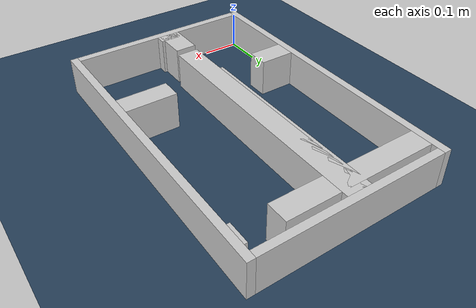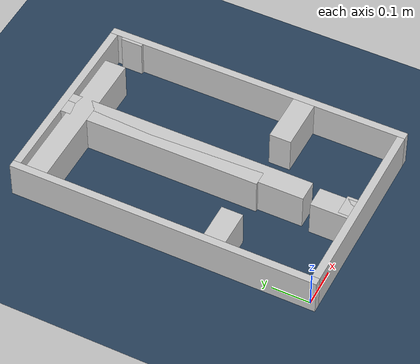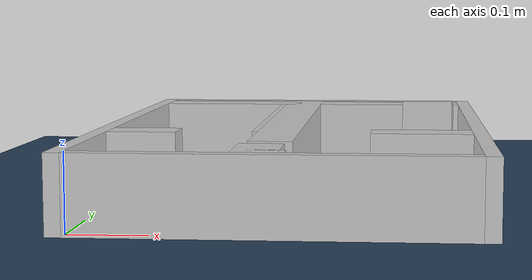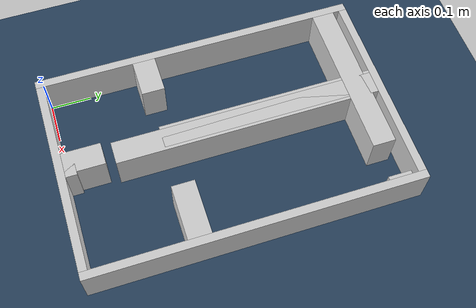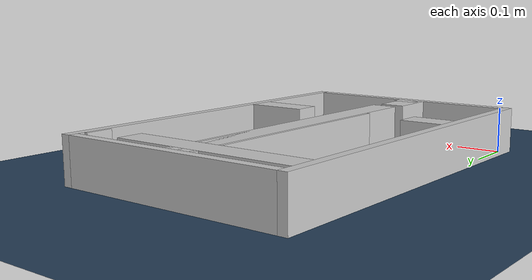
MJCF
<?xml version="1.0" ?>
<mujoco model="generated_real_template">
  <compiler angle="degree"/>
  <option timestep="0.002" integrator="implicitfast" iterations="100" cone="elliptic"/>
  <default>
    <geom density="1"/>
  </default>
  <asset>
    <texture builtin="gradient" height="3072" rgb1="0.3 0.5 0.7" rgb2="0 0 0" type="skybox" width="512"/>
    <texture builtin="checker" height="300" mark="edge" markrgb="0.8 0.8 0.8" name="groundplane" rgb1="0.2 0.3 0.4" rgb2="0.1 0.2 0.3" type="2d" width="300"/>
    <material name="groundplane" reflectance="0.2" texrepeat="5 5" texture="groundplane" texuniform="true"/>
  </asset>
  <worldbody>
    <light dir="0 0 -1" directional="true" pos="0 0 1.5"/>
    <geom name="floor" type="plane" condim="4" friction="0.5 0.005 0.001" material="groundplane" size="0 0 0.05"/>
    <body name="walls">
      <geom name="wall_boundary_left" type="box" condim="4" friction="1.0 0.005 0.0001" rgba="0.8 0.8 0.8 1" pos="-0.010000 0.387500 0.050000" euler="0 0 0.000000" size="0.010000 0.407500 0.050000"/>
      <geom name="wall_boundary_right" type="box" condim="4" friction="1.0 0.005 0.0001" rgba="0.8 0.8 0.8 1" pos="0.500000 0.387500 0.050000" euler="0 0 0.000000" size="0.010000 0.407500 0.050000"/>
      <geom name="wall_boundary_bottom" type="box" condim="4" friction="1.0 0.005 0.0001" rgba="0.8 0.8 0.8 1" pos="0.245000 -0.010000 0.050000" euler="0 0 0.000000" size="0.245000 0.010000 0.050000"/>
      <geom name="wall_boundary_top" type="box" condim="4" friction="1.0 0.005 0.0001" rgba="0.8 0.8 0.8 1" pos="0.245000 0.785000 0.050000" euler="0 0 0.000000" size="0.245000 0.010000 0.050000"/>
      <geom name="wall_inner_1_1" type="box" condim="4" friction="1.0 0.005 0.0001" rgba="0.8 0.8 0.8 1" pos="0.046981 0.251595 0.050000" euler="0 0 0.000000" size="0.046981 0.028500 0.050000"/>
      <geom name="wall_inner_1_2" type="box" condim="4" friction="1.0 0.005 0.0001" rgba="0.8 0.8 0.8 1" pos="0.422115 0.251595 0.050000" euler="0 0 0.000000" size="0.067885 0.028500 0.050000"/>
      <geom name="wall_inner_2_1" type="box" condim="4" friction="1.0 0.005 0.0001" rgba="0.8 0.8 0.8 1" pos="0.223480 0.048186 0.050000" euler="0 0 90.000000" size="0.048186 0.028500 0.050000"/>
      <geom name="wall_inner_2_2" type="box" condim="4" friction="1.0 0.005 0.0001" rgba="0.8 0.8 0.8 1" pos="0.223480 0.506411 0.050000" euler="0 0 90.000000" size="0.268589 0.028500 0.050000"/>
      <geom name="wall_inner_3_1" type="box" condim="4" friction="1.0 0.005 0.0001" rgba="0.8 0.8 0.8 1" pos="0.231138 0.013659 0.050000" euler="0 0 90.000000" size="0.013659 0.028500 0.050000"/>
      <geom name="wall_inner_3_2" type="box" condim="4" friction="1.0 0.005 0.0001" rgba="0.8 0.8 0.8 1" pos="0.231138 0.446807 0.050000" euler="0 0 90.000000" size="0.328193 0.028500 0.050000"/>
      <geom name="wall_inner_4_1" type="box" condim="4" friction="1.0 0.005 0.0001" rgba="0.8 0.8 0.8 1" pos="0.198659 0.730924 0.050000" euler="0 0 0.000000" size="0.198659 0.028500 0.050000"/>
      <geom name="wall_inner_4_2" type="box" condim="4" friction="1.0 0.005 0.0001" rgba="0.8 0.8 0.8 1" pos="0.485939 0.730924 0.050000" euler="0 0 0.000000" size="0.004061 0.028500 0.050000"/>
    </body>
  </worldbody>
</mujoco>
